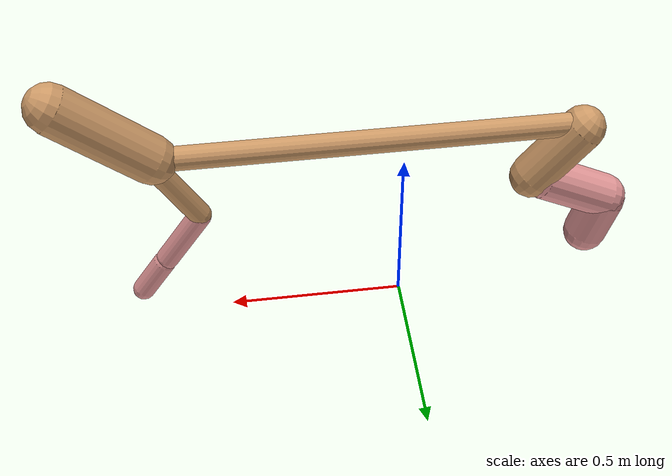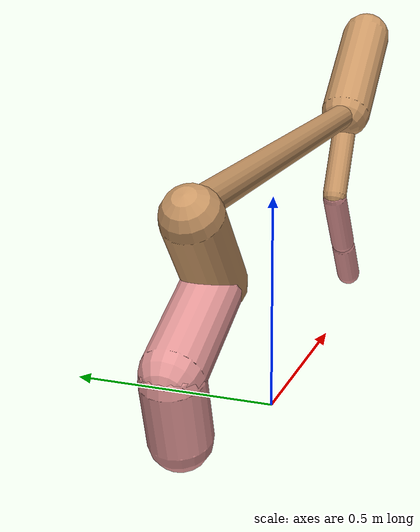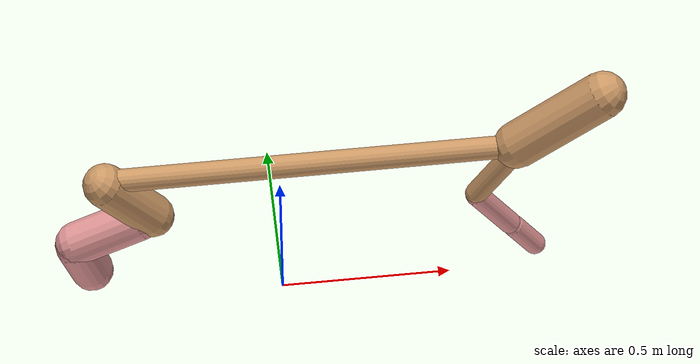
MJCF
<mujoco model="cheetah">
  <compiler angle="radian" coordinate="local" inertiafromgeom="true" settotalmass="14" />
  <default>
    <joint armature=".1" damping=".01" limited="true" solimplimit="0 .8 .03" solreflimit=".02 1" stiffness="8" />
    <geom conaffinity="0" condim="3" contype="1" friction="0.8 .1 .1" rgba="0.8 0.6 .4 1" solimp="0.0 0.8 0.01" solref="0.02 1" />
    <motor ctrllimited="true" ctrlrange="-1 1" />
  </default>
  <size nstack="300000" nuser_geom="1" />
  <option gravity="0 0 -9.81" timestep="0.01" />
  <worldbody>
    <body name="torso" pos="0.0 0.0 0.5863413475226793">
      <joint armature="0" axis="1 0 0" damping="0" limited="false" name="ignorex" pos="0 0 0" stiffness="0" type="slide" />
      <joint armature="0" axis="0 0 1" damping="0" limited="false" name="ignorez" pos="0 0 0" stiffness="0" type="slide" />
      <joint armature="0" axis="0 1 0" damping="0" limited="false" name="ignorey" pos="0 0 0" stiffness="0" type="hinge" />
      <geom fromto="-0.5 0.0 0.0 0.68454051593994 0.0 0.0" name="torso" size="0.03294130001038944" type="capsule" />
      <geom axisangle="0 1 0 .87" name="head" pos="0.78454051593994 0.0 0.1" size="0.0671392949945098 0.15" type="capsule" />

      <body name="bthigh" pos="-.5 0 0">
        <joint axis="0 1 0" damping="6" name="bthigh" pos="0 0 0" range="-.52 1.05" stiffness="240" type="hinge" />
        <geom axisangle="0 1 0 -3.8" name="bthigh" pos="0.0734775819030384 0.0 -0.0955208564739499" size="0.06252361812018965 0.10149999999999999" type="capsule" />
        <body name="bshin" pos="0.10695516380607678 0.0 -0.18104171294789978">
          <joint axis="0 1 0" damping="4.5" name="bshin" pos="0 0 0" range="-.785 .785" stiffness="180" type="hinge" />
          <geom axisangle="0 1 0 -2.03" name="bshin" pos="-0.0997507764050038 0.0 -0.0498753882025019" rgba="0.9 0.6 0.6 1" size="0.06252361812018965 0.105" type="capsule" />
          <body name="bfoot" pos="-0.1995015528100076 0.0 -0.0997507764050038">
            <joint axis="0 1 0" damping="3" name="bfoot" pos="0 0 0" range="-.4 .785" stiffness="120" type="hinge" />
            <geom axisangle="0 1 0 -.27" name="bfoot" pos="0.021667753813597694 0.0 -0.07005907066396588" rgba="0.9 0.6 0.6 1" size="0.06252361812018965 0.0658" type="capsule" />
            <inertial mass="10" />
          </body>
        </body>
      </body>
      <body name="fthigh" pos="0.68454051593994 0.0 0.0">
        <joint axis="0 1 0" damping="4.5" name="fthigh" pos="0 0 0" range="-1.5 0.8" stiffness="180" type="hinge" />
        <geom axisangle="0 1 0 .52" name="fthigh" pos="-0.06203261805732571 0.0 -0.10634163095541549" size="0.0322 0.11718765608840623" type="capsule" />
        <body name="fshin" pos="-0.12406523611465142 0.0 -0.21268326191083098">
          <joint axis="0 1 0" damping="3" name="fshin" pos="0 0 0" range="-1.2 1.1" stiffness="120" type="hinge" />
          <geom axisangle="0 1 0 -.6" name="fshin" pos="0.05762146114733903 0.0 -0.07978356158862326" rgba="0.9 0.6 0.6 1" size="0.0322 0.0933976807922636" type="capsule" />
          <body name="ffoot" pos="0.11524292229467806 0.0 -0.15956712317724653">
            <joint axis="0 1 0" damping="1.5" name="ffoot" pos="0 0 0" range="-3.1 -0.3" stiffness="60" type="hinge" />
            <geom axisangle="0 1 0 -.6" name="ffoot" pos="0.04049966052281362 0.0 -0.06299947192437676" rgba="0.9 0.6 0.6 1" size="0.0322 0.06167771373074012" type="capsule" />
            <inertial mass="10" />
          </body>
        </body>
      </body>
    </body>
  </worldbody>
  <actuator>
    <motor gear="120" joint="bthigh" name="bthigh" />
    <motor gear="90" joint="bshin" name="bshin" />
    <motor gear="60" joint="bfoot" name="bfoot" />
    <motor gear="120" joint="fthigh" name="fthigh" />
    <motor gear="60" joint="fshin" name="fshin" />
    <motor gear="30" joint="ffoot" name="ffoot" />
  </actuator>
</mujoco>
